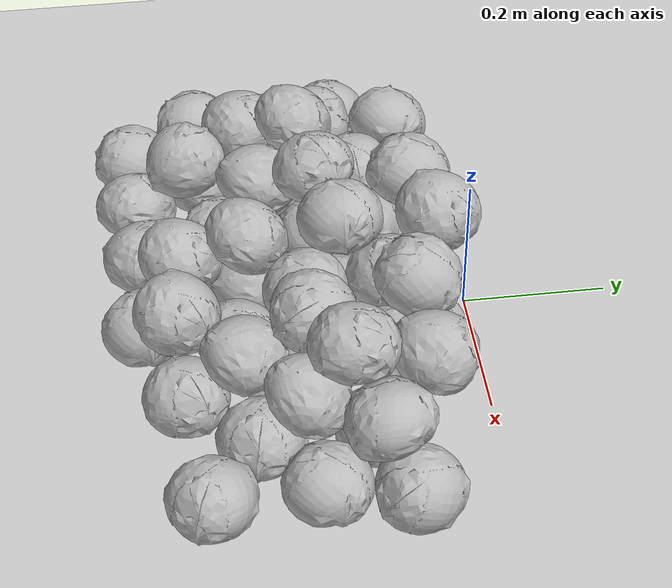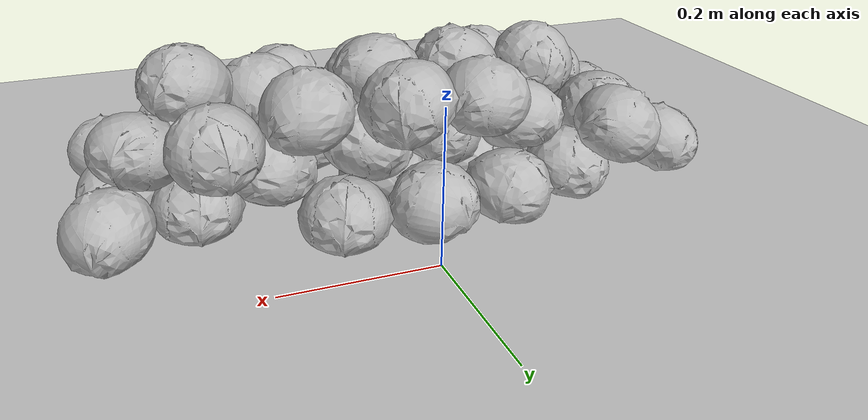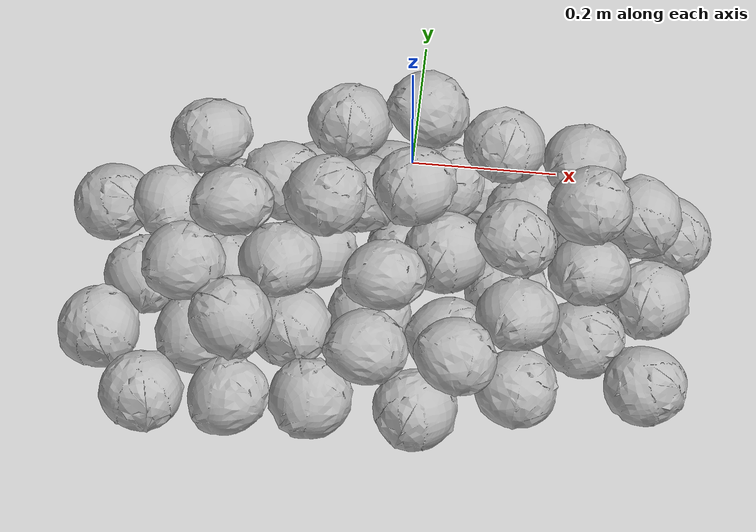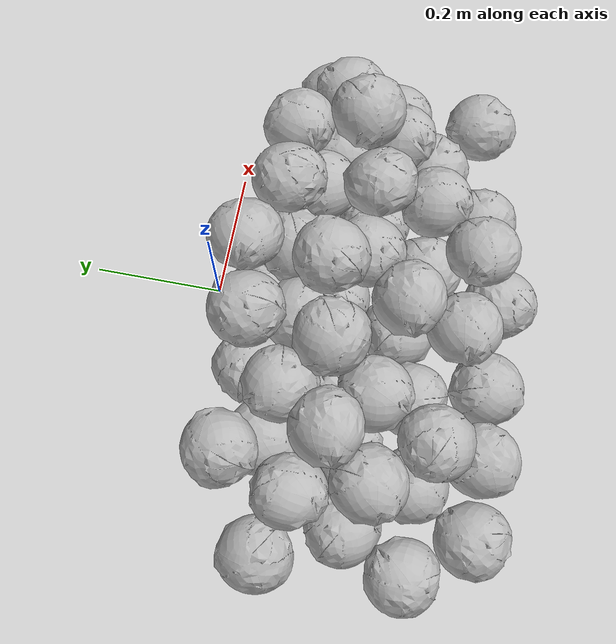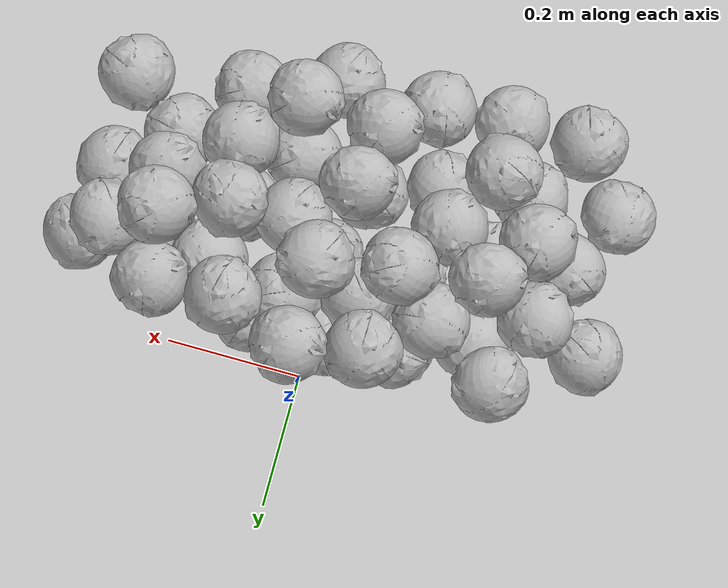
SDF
<sdf version="1.6">
 <world name="default">
  <model name="ground_plane">
   <static>1</static>
   <link name="link">
    <collision name="collision">
     <geometry><plane><normal>0 0 1</normal><size>100 100</size></plane></geometry>
     <surface><friction><ode><mu>100</mu><mu2>50</mu2></ode></friction></surface>
    </collision>
    <visual name="visual">
     <cast_shadows>0</cast_shadows>
     <geometry><plane><normal>0 0 1</normal><size>100 100</size></plane></geometry>
     <material>
      <script><uri>file://media/materials/scripts/gazebo.material</uri><name>Gazebo/Grey</name></script>
     </material>
    </visual>
   </link>
  </model>
  <model name="cabbage_0">
   <link name="link">
    <inertial>
     <mass>1</mass>
     <inertia><ixx>0.001</ixx><ixy>0</ixy><ixz>0</ixz><iyy>0.001</iyy><iyz>0</iyz><izz>0.001</izz></inertia>
    </inertial>
    <collision name="collision">
     <geometry>
      <mesh><scale>0.001 0.001 0.001</scale><uri>model://cabbage/cabbage_single.dae</uri></mesh>
     </geometry>
     <surface>
      <friction><ode><mu>0.8</mu><mu2>0.8</mu2></ode></friction>
      <contact><ode><max_vel>0.1</max_vel><min_depth>0.0001</min_depth></ode></contact>
     </surface>
    </collision>
    <visual name="visual">
     <geometry>
      <mesh><scale>0.001 0.001 0.001</scale><uri>model://cabbage/cabbage_single.dae</uri></mesh>
     </geometry>
     <material><script><uri>model://cabbage/texture.material</uri><name>CabbageTexture</name></script></material>
    </visual>
   </link>
   <pose>0.095652 -0.068931 0.004157 1.60014 0.007328 -0.263092</pose>
  </model>
  <model name="cabbage_3">
   <link name="link">
    <inertial>
     <mass>1</mass>
     <inertia><ixx>0.001</ixx><ixy>0</ixy><ixz>0</ixz><iyy>0.001</iyy><iyz>0</iyz><izz>0.001</izz></inertia>
    </inertial>
    <collision name="collision">
     <geometry>
      <mesh><scale>0.001 0.001 0.001</scale><uri>model://cabbage/cabbage_single.dae</uri></mesh>
     </geometry>
     <surface>
      <friction><ode><mu>0.8</mu><mu2>0.8</mu2></ode></friction>
      <contact><ode><max_vel>0.1</max_vel><min_depth>0.0001</min_depth></ode></contact>
     </surface>
    </collision>
    <visual name="visual">
     <geometry>
      <mesh><scale>0.001 0.001 0.001</scale><uri>model://cabbage/cabbage_single.dae</uri></mesh>
     </geometry>
     <material><script><uri>model://cabbage/texture.material</uri><name>CabbageTexture</name></script></material>
    </visual>
   </link>
   <pose>0.26333 -0.303335 0.004278 1.61265 0.006299 -1.68663</pose>
  </model>
  <model name="cabbage_4">
   <link name="link">
    <inertial>
     <mass>1</mass>
     <inertia><ixx>0.001</ixx><ixy>0</ixy><ixz>0</ixz><iyy>0.001</iyy><iyz>0</iyz><izz>0.001</izz></inertia>
    </inertial>
    <collision name="collision">
     <geometry>
      <mesh><scale>0.001 0.001 0.001</scale><uri>model://cabbage/cabbage_single.dae</uri></mesh>
     </geometry>
     <surface>
      <friction><ode><mu>0.8</mu><mu2>0.8</mu2></ode></friction>
      <contact><ode><max_vel>0.1</max_vel><min_depth>0.0001</min_depth></ode></contact>
     </surface>
    </collision>
    <visual name="visual">
     <geometry>
      <mesh><scale>0.001 0.001 0.001</scale><uri>model://cabbage/cabbage_single.dae</uri></mesh>
     </geometry>
     <material><script><uri>model://cabbage/texture.material</uri><name>CabbageTexture</name></script></material>
    </visual>
   </link>
   <pose>-0.031392 -0.290349 0.003988 1.57302 0.014128 1.00935</pose>
  </model>
  <model name="cabbage_5">
   <link name="link">
    <inertial>
     <mass>1</mass>
     <inertia><ixx>0.001</ixx><ixy>0</ixy><ixz>0</ixz><iyy>0.001</iyy><iyz>0</iyz><izz>0.001</izz></inertia>
    </inertial>
    <collision name="collision">
     <geometry>
      <mesh><scale>0.001 0.001 0.001</scale><uri>model://cabbage/cabbage_single.dae</uri></mesh>
     </geometry>
     <surface>
      <friction><ode><mu>0.8</mu><mu2>0.8</mu2></ode></friction>
      <contact><ode><max_vel>0.1</max_vel><min_depth>0.0001</min_depth></ode></contact>
     </surface>
    </collision>
    <visual name="visual">
     <geometry>
      <mesh><scale>0.001 0.001 0.001</scale><uri>model://cabbage/cabbage_single.dae</uri></mesh>
     </geometry>
     <material><script><uri>model://cabbage/texture.material</uri><name>CabbageTexture</name></script></material>
    </visual>
   </link>
   <pose>-0.123182 -0.082967 0.005416 1.46042 0.123401 1.52923</pose>
  </model>
  <model name="cabbage_8">
   <link name="link">
    <inertial>
     <mass>1</mass>
     <inertia><ixx>0.001</ixx><ixy>0</ixy><ixz>0</ixz><iyy>0.001</iyy><iyz>0</iyz><izz>0.001</izz></inertia>
    </inertial>
    <collision name="collision">
     <geometry>
      <mesh><scale>0.001 0.001 0.001</scale><uri>model://cabbage/cabbage_single.dae</uri></mesh>
     </geometry>
     <surface>
      <friction><ode><mu>0.8</mu><mu2>0.8</mu2></ode></friction>
      <contact><ode><max_vel>0.1</max_vel><min_depth>0.0001</min_depth></ode></contact>
     </surface>
    </collision>
    <visual name="visual">
     <geometry>
      <mesh><scale>0.001 0.001 0.001</scale><uri>model://cabbage/cabbage_single.dae</uri></mesh>
     </geometry>
     <material><script><uri>model://cabbage/texture.material</uri><name>CabbageTexture</name></script></material>
    </visual>
   </link>
   <pose>0.144358 -0.227039 0.004095 1.59204 0.007763 2.21992</pose>
  </model>
  <model name="cabbage_9">
   <link name="link">
    <inertial>
     <mass>1</mass>
     <inertia><ixx>0.001</ixx><ixy>0</ixy><ixz>0</ixz><iyy>0.001</iyy><iyz>0</iyz><izz>0.001</izz></inertia>
    </inertial>
    <collision name="collision">
     <geometry>
      <mesh><scale>0.001 0.001 0.001</scale><uri>model://cabbage/cabbage_single.dae</uri></mesh>
     </geometry>
     <surface>
      <friction><ode><mu>0.8</mu><mu2>0.8</mu2></ode></friction>
      <contact><ode><max_vel>0.1</max_vel><min_depth>0.0001</min_depth></ode></contact>
     </surface>
    </collision>
    <visual name="visual">
     <geometry>
      <mesh><scale>0.001 0.001 0.001</scale><uri>model://cabbage/cabbage_single.dae</uri></mesh>
     </geometry>
     <material><script><uri>model://cabbage/texture.material</uri><name>CabbageTexture</name></script></material>
    </visual>
   </link>
   <pose>-0.092201 -0.428561 0.006497 1.65998 -0.10997 0.374089</pose>
  </model>
  <model name="cabbage_13">
   <link name="link">
    <inertial>
     <mass>1</mass>
     <inertia><ixx>0.001</ixx><ixy>0</ixy><ixz>0</ixz><iyy>0.001</iyy><iyz>0</iyz><izz>0.001</izz></inertia>
    </inertial>
    <collision name="collision">
     <geometry>
      <mesh><scale>0.001 0.001 0.001</scale><uri>model://cabbage/cabbage_single.dae</uri></mesh>
     </geometry>
     <surface>
      <friction><ode><mu>0.8</mu><mu2>0.8</mu2></ode></friction>
      <contact><ode><max_vel>0.1</max_vel><min_depth>0.0001</min_depth></ode></contact>
     </surface>
    </collision>
    <visual name="visual">
     <geometry>
      <mesh><scale>0.001 0.001 0.001</scale><uri>model://cabbage/cabbage_single.dae</uri></mesh>
     </geometry>
     <material><script><uri>model://cabbage/texture.material</uri><name>CabbageTexture</name></script></material>
    </visual>
   </link>
   <pose>0.257826 -0.154445 0.003945 1.57602 0.008658 -0.016472</pose>
  </model>
  <model name="cabbage_14">
   <link name="link">
    <inertial>
     <mass>1</mass>
     <inertia><ixx>0.001</ixx><ixy>0</ixy><ixz>0</ixz><iyy>0.001</iyy><iyz>0</iyz><izz>0.001</izz></inertia>
    </inertial>
    <collision name="collision">
     <geometry>
      <mesh><scale>0.001 0.001 0.001</scale><uri>model://cabbage/cabbage_single.dae</uri></mesh>
     </geometry>
     <surface>
      <friction><ode><mu>0.8</mu><mu2>0.8</mu2></ode></friction>
      <contact><ode><max_vel>0.1</max_vel><min_depth>0.0001</min_depth></ode></contact>
     </surface>
    </collision>
    <visual name="visual">
     <geometry>
      <mesh><scale>0.001 0.001 0.001</scale><uri>model://cabbage/cabbage_single.dae</uri></mesh>
     </geometry>
     <material><script><uri>model://cabbage/texture.material</uri><name>CabbageTexture</name></script></material>
    </visual>
   </link>
   <pose>-0.256394 -0.335493 0.006672 1.7714 -0.058008 0.009481</pose>
  </model>
  <model name="cabbage_15">
   <link name="link">
    <inertial>
     <mass>1</mass>
     <inertia><ixx>0.001</ixx><ixy>0</ixy><ixz>0</ixz><iyy>0.001</iyy><iyz>0</iyz><izz>0.001</izz></inertia>
    </inertial>
    <collision name="collision">
     <geometry>
      <mesh><scale>0.001 0.001 0.001</scale><uri>model://cabbage/cabbage_single.dae</uri></mesh>
     </geometry>
     <surface>
      <friction><ode><mu>0.8</mu><mu2>0.8</mu2></ode></friction>
      <contact><ode><max_vel>0.1</max_vel><min_depth>0.0001</min_depth></ode></contact>
     </surface>
    </collision>
    <visual name="visual">
     <geometry>
      <mesh><scale>0.001 0.001 0.001</scale><uri>model://cabbage/cabbage_single.dae</uri></mesh>
     </geometry>
     <material><script><uri>model://cabbage/texture.material</uri><name>CabbageTexture</name></script></material>
    </visual>
   </link>
   <pose>0.007523 -0.177659 0.005238 1.46223 -0.141863 2.21274</pose>
  </model>
  <model name="cabbage_18">
   <link name="link">
    <inertial>
     <mass>1</mass>
     <inertia><ixx>0.001</ixx><ixy>0</ixy><ixz>0</ixz><iyy>0.001</iyy><iyz>0</iyz><izz>0.001</izz></inertia>
    </inertial>
    <collision name="collision">
     <geometry>
      <mesh><scale>0.001 0.001 0.001</scale><uri>model://cabbage/cabbage_single.dae</uri></mesh>
     </geometry>
     <surface>
      <friction><ode><mu>0.8</mu><mu2>0.8</mu2></ode></friction>
      <contact><ode><max_vel>0.1</max_vel><min_depth>0.0001</min_depth></ode></contact>
     </surface>
    </collision>
    <visual name="visual">
     <geometry>
      <mesh><scale>0.001 0.001 0.001</scale><uri>model://cabbage/cabbage_single.dae</uri></mesh>
     </geometry>
     <material><script><uri>model://cabbage/texture.material</uri><name>CabbageTexture</name></script></material>
    </visual>
   </link>
   <pose>0.177823 -0.389709 0.00418 1.55977 0.036699 -0.992467</pose>
  </model>
  <model name="cabbage_19">
   <link name="link">
    <inertial>
     <mass>1</mass>
     <inertia><ixx>0.001</ixx><ixy>0</ixy><ixz>0</ixz><iyy>0.001</iyy><iyz>0</iyz><izz>0.001</izz></inertia>
    </inertial>
    <collision name="collision">
     <geometry>
      <mesh><scale>0.001 0.001 0.001</scale><uri>model://cabbage/cabbage_single.dae</uri></mesh>
     </geometry>
     <surface>
      <friction><ode><mu>0.8</mu><mu2>0.8</mu2></ode></friction>
      <contact><ode><max_vel>0.1</max_vel><min_depth>0.0001</min_depth></ode></contact>
     </surface>
    </collision>
    <visual name="visual">
     <geometry>
      <mesh><scale>0.001 0.001 0.001</scale><uri>model://cabbage/cabbage_single.dae</uri></mesh>
     </geometry>
     <material><script><uri>model://cabbage/texture.material</uri><name>CabbageTexture</name></script></material>
    </visual>
   </link>
   <pose>-0.223103 -0.118078 0.006149 1.41108 -0.183366 0.392662</pose>
  </model>
  <model name="cabbage_23">
   <link name="link">
    <inertial>
     <mass>1</mass>
     <inertia><ixx>0.001</ixx><ixy>0</ixy><ixz>0</ixz><iyy>0.001</iyy><iyz>0</iyz><izz>0.001</izz></inertia>
    </inertial>
    <collision name="collision">
     <geometry>
      <mesh><scale>0.001 0.001 0.001</scale><uri>model://cabbage/cabbage_single.dae</uri></mesh>
     </geometry>
     <surface>
      <friction><ode><mu>0.8</mu><mu2>0.8</mu2></ode></friction>
      <contact><ode><max_vel>0.1</max_vel><min_depth>0.0001</min_depth></ode></contact>
     </surface>
    </collision>
    <visual name="visual">
     <geometry>
      <mesh><scale>0.001 0.001 0.001</scale><uri>model://cabbage/cabbage_single.dae</uri></mesh>
     </geometry>
     <material><script><uri>model://cabbage/texture.material</uri><name>CabbageTexture</name></script></material>
    </visual>
   </link>
   <pose>0.342589 -0.232944 0.003949 1.57656 0.007596 2.96856</pose>
  </model>
  <model name="cabbage_24">
   <link name="link">
    <inertial>
     <mass>1</mass>
     <inertia><ixx>0.001</ixx><ixy>0</ixy><ixz>0</ixz><iyy>0.001</iyy><iyz>0</iyz><izz>0.001</izz></inertia>
    </inertial>
    <collision name="collision">
     <geometry>
      <mesh><scale>0.001 0.001 0.001</scale><uri>model://cabbage/cabbage_single.dae</uri></mesh>
     </geometry>
     <surface>
      <friction><ode><mu>0.8</mu><mu2>0.8</mu2></ode></friction>
      <contact><ode><max_vel>0.1</max_vel><min_depth>0.0001</min_depth></ode></contact>
     </surface>
    </collision>
    <visual name="visual">
     <geometry>
      <mesh><scale>0.001 0.001 0.001</scale><uri>model://cabbage/cabbage_single.dae</uri></mesh>
     </geometry>
     <material><script><uri>model://cabbage/texture.material</uri><name>CabbageTexture</name></script></material>
    </visual>
   </link>
   <pose>-0.117569 -0.195493 0.003917 1.57591 0.008334 2.5017</pose>
  </model>
  <model name="cabbage_25">
   <link name="link">
    <inertial>
     <mass>1</mass>
     <inertia><ixx>0.001</ixx><ixy>0</ixy><ixz>0</ixz><iyy>0.001</iyy><iyz>0</iyz><izz>0.001</izz></inertia>
    </inertial>
    <collision name="collision">
     <geometry>
      <mesh><scale>0.001 0.001 0.001</scale><uri>model://cabbage/cabbage_single.dae</uri></mesh>
     </geometry>
     <surface>
      <friction><ode><mu>0.8</mu><mu2>0.8</mu2></ode></friction>
      <contact><ode><max_vel>0.1</max_vel><min_depth>0.0001</min_depth></ode></contact>
     </surface>
    </collision>
    <visual name="visual">
     <geometry>
      <mesh><scale>0.001 0.001 0.001</scale><uri>model://cabbage/cabbage_single.dae</uri></mesh>
     </geometry>
     <material><script><uri>model://cabbage/texture.material</uri><name>CabbageTexture</name></script></material>
    </visual>
   </link>
   <pose>-0.028365 -0.073903 0.009732 1.2463 -0.214871 -1.57877</pose>
  </model>
  <model name="cabbage_29">
   <link name="link">
    <inertial>
     <mass>1</mass>
     <inertia><ixx>0.001</ixx><ixy>0</ixy><ixz>0</ixz><iyy>0.001</iyy><iyz>0</iyz><izz>0.001</izz></inertia>
    </inertial>
    <collision name="collision">
     <geometry>
      <mesh><scale>0.001 0.001 0.001</scale><uri>model://cabbage/cabbage_single.dae</uri></mesh>
     </geometry>
     <surface>
      <friction><ode><mu>0.8</mu><mu2>0.8</mu2></ode></friction>
      <contact><ode><max_vel>0.1</max_vel><min_depth>0.0001</min_depth></ode></contact>
     </surface>
    </collision>
    <visual name="visual">
     <geometry>
      <mesh><scale>0.001 0.001 0.001</scale><uri>model://cabbage/cabbage_single.dae</uri></mesh>
     </geometry>
     <material><script><uri>model://cabbage/texture.material</uri><name>CabbageTexture</name></script></material>
    </visual>
   </link>
   <pose>-0.336674 -0.259183 0.005064 1.47229 0.012889 1.13985</pose>
  </model>
  <model name="cabbage_33">
   <link name="link">
    <inertial>
     <mass>1</mass>
     <inertia><ixx>0.001</ixx><ixy>0</ixy><ixz>0</ixz><iyy>0.001</iyy><iyz>0</iyz><izz>0.001</izz></inertia>
    </inertial>
    <collision name="collision">
     <geometry>
      <mesh><scale>0.001 0.001 0.001</scale><uri>model://cabbage/cabbage_single.dae</uri></mesh>
     </geometry>
     <surface>
      <friction><ode><mu>0.8</mu><mu2>0.8</mu2></ode></friction>
      <contact><ode><max_vel>0.1</max_vel><min_depth>0.0001</min_depth></ode></contact>
     </surface>
    </collision>
    <visual name="visual">
     <geometry>
      <mesh><scale>0.001 0.001 0.001</scale><uri>model://cabbage/cabbage_single.dae</uri></mesh>
     </geometry>
     <material><script><uri>model://cabbage/texture.material</uri><name>CabbageTexture</name></script></material>
    </visual>
   </link>
   <pose>0.176023 -0.136395 0.05431 1.38701 -0.008547 1.23999</pose>
  </model>
  <model name="cabbage_34">
   <link name="link">
    <inertial>
     <mass>1</mass>
     <inertia><ixx>0.001</ixx><ixy>0</ixy><ixz>0</ixz><iyy>0.001</iyy><iyz>0</iyz><izz>0.001</izz></inertia>
    </inertial>
    <collision name="collision">
     <geometry>
      <mesh><scale>0.001 0.001 0.001</scale><uri>model://cabbage/cabbage_single.dae</uri></mesh>
     </geometry>
     <surface>
      <friction><ode><mu>0.8</mu><mu2>0.8</mu2></ode></friction>
      <contact><ode><max_vel>0.1</max_vel><min_depth>0.0001</min_depth></ode></contact>
     </surface>
    </collision>
    <visual name="visual">
     <geometry>
      <mesh><scale>0.001 0.001 0.001</scale><uri>model://cabbage/cabbage_single.dae</uri></mesh>
     </geometry>
     <material><script><uri>model://cabbage/texture.material</uri><name>CabbageTexture</name></script></material>
    </visual>
   </link>
   <pose>-0.382624 -0.145849 0.009496 1.88399 0.106803 -2.03489</pose>
  </model>
  <model name="cabbage_38">
   <link name="link">
    <inertial>
     <mass>1</mass>
     <inertia><ixx>0.001</ixx><ixy>0</ixy><ixz>0</ixz><iyy>0.001</iyy><iyz>0</iyz><izz>0.001</izz></inertia>
    </inertial>
    <collision name="collision">
     <geometry>
      <mesh><scale>0.001 0.001 0.001</scale><uri>model://cabbage/cabbage_single.dae</uri></mesh>
     </geometry>
     <surface>
      <friction><ode><mu>0.8</mu><mu2>0.8</mu2></ode></friction>
      <contact><ode><max_vel>0.1</max_vel><min_depth>0.0001</min_depth></ode></contact>
     </surface>
    </collision>
    <visual name="visual">
     <geometry>
      <mesh><scale>0.001 0.001 0.001</scale><uri>model://cabbage/cabbage_single.dae</uri></mesh>
     </geometry>
     <material><script><uri>model://cabbage/texture.material</uri><name>CabbageTexture</name></script></material>
    </visual>
   </link>
   <pose>0.041406 -0.434485 0.005413 1.44281 -0.136354 2.85036</pose>
  </model>
  <model name="cabbage_39">
   <link name="link">
    <inertial>
     <mass>1</mass>
     <inertia><ixx>0.001</ixx><ixy>0</ixy><ixz>0</ixz><iyy>0.001</iyy><iyz>0</iyz><izz>0.001</izz></inertia>
    </inertial>
    <collision name="collision">
     <geometry>
      <mesh><scale>0.001 0.001 0.001</scale><uri>model://cabbage/cabbage_single.dae</uri></mesh>
     </geometry>
     <surface>
      <friction><ode><mu>0.8</mu><mu2>0.8</mu2></ode></friction>
      <contact><ode><max_vel>0.1</max_vel><min_depth>0.0001</min_depth></ode></contact>
     </surface>
    </collision>
    <visual name="visual">
     <geometry>
      <mesh><scale>0.001 0.001 0.001</scale><uri>model://cabbage/cabbage_single.dae</uri></mesh>
     </geometry>
     <material><script><uri>model://cabbage/texture.material</uri><name>CabbageTexture</name></script></material>
    </visual>
   </link>
   <pose>-0.119221 -0.321247 0.009598 1.53789 0.350993 -2.77977</pose>
  </model>
  <model name="cabbage_43">
   <link name="link">
    <inertial>
     <mass>1</mass>
     <inertia><ixx>0.001</ixx><ixy>0</ixy><ixz>0</ixz><iyy>0.001</iyy><iyz>0</iyz><izz>0.001</izz></inertia>
    </inertial>
    <collision name="collision">
     <geometry>
      <mesh><scale>0.001 0.001 0.001</scale><uri>model://cabbage/cabbage_single.dae</uri></mesh>
     </geometry>
     <surface>
      <friction><ode><mu>0.8</mu><mu2>0.8</mu2></ode></friction>
      <contact><ode><max_vel>0.1</max_vel><min_depth>0.0001</min_depth></ode></contact>
     </surface>
    </collision>
    <visual name="visual">
     <geometry>
      <mesh><scale>0.001 0.001 0.001</scale><uri>model://cabbage/cabbage_single.dae</uri></mesh>
     </geometry>
     <material><script><uri>model://cabbage/texture.material</uri><name>CabbageTexture</name></script></material>
    </visual>
   </link>
   <pose>-0.031149 -0.397083 0.063675 1.22152 0.056045 -0.294026</pose>
  </model>
  <model name="cabbage_44">
   <link name="link">
    <inertial>
     <mass>1</mass>
     <inertia><ixx>0.001</ixx><ixy>0</ixy><ixz>0</ixz><iyy>0.001</iyy><iyz>0</iyz><izz>0.001</izz></inertia>
    </inertial>
    <collision name="collision">
     <geometry>
      <mesh><scale>0.001 0.001 0.001</scale><uri>model://cabbage/cabbage_single.dae</uri></mesh>
     </geometry>
     <surface>
      <friction><ode><mu>0.8</mu><mu2>0.8</mu2></ode></friction>
      <contact><ode><max_vel>0.1</max_vel><min_depth>0.0001</min_depth></ode></contact>
     </surface>
    </collision>
    <visual name="visual">
     <geometry>
      <mesh><scale>0.001 0.001 0.001</scale><uri>model://cabbage/cabbage_single.dae</uri></mesh>
     </geometry>
     <material><script><uri>model://cabbage/texture.material</uri><name>CabbageTexture</name></script></material>
    </visual>
   </link>
   <pose>-0.231266 -0.253244 0.008444 1.53178 0.305616 1.14866</pose>
  </model>
  <model name="cabbage_48">
   <link name="link">
    <inertial>
     <mass>1</mass>
     <inertia><ixx>0.001</ixx><ixy>0</ixy><ixz>0</ixz><iyy>0.001</iyy><iyz>0</iyz><izz>0.001</izz></inertia>
    </inertial>
    <collision name="collision">
     <geometry>
      <mesh><scale>0.001 0.001 0.001</scale><uri>model://cabbage/cabbage_single.dae</uri></mesh>
     </geometry>
     <surface>
      <friction><ode><mu>0.8</mu><mu2>0.8</mu2></ode></friction>
      <contact><ode><max_vel>0.1</max_vel><min_depth>0.0001</min_depth></ode></contact>
     </surface>
    </collision>
    <visual name="visual">
     <geometry>
      <mesh><scale>0.001 0.001 0.001</scale><uri>model://cabbage/cabbage_single.dae</uri></mesh>
     </geometry>
     <material><script><uri>model://cabbage/texture.material</uri><name>CabbageTexture</name></script></material>
    </visual>
   </link>
   <pose>0.08047 -0.316313 0.003954 1.57567 0.008816 -0.81952</pose>
  </model>
  <model name="cabbage_49">
   <link name="link">
    <inertial>
     <mass>1</mass>
     <inertia><ixx>0.001</ixx><ixy>0</ixy><ixz>0</ixz><iyy>0.001</iyy><iyz>0</iyz><izz>0.001</izz></inertia>
    </inertial>
    <collision name="collision">
     <geometry>
      <mesh><scale>0.001 0.001 0.001</scale><uri>model://cabbage/cabbage_single.dae</uri></mesh>
     </geometry>
     <surface>
      <friction><ode><mu>0.8</mu><mu2>0.8</mu2></ode></friction>
      <contact><ode><max_vel>0.1</max_vel><min_depth>0.0001</min_depth></ode></contact>
     </surface>
    </collision>
    <visual name="visual">
     <geometry>
      <mesh><scale>0.001 0.001 0.001</scale><uri>model://cabbage/cabbage_single.dae</uri></mesh>
     </geometry>
     <material><script><uri>model://cabbage/texture.material</uri><name>CabbageTexture</name></script></material>
    </visual>
   </link>
   <pose>-0.164239 -0.12843 0.077256 1.53273 0.139971 -1.39683</pose>
  </model>
  <model name="cabbage_53">
   <link name="link">
    <inertial>
     <mass>1</mass>
     <inertia><ixx>0.001</ixx><ixy>0</ixy><ixz>0</ixz><iyy>0.001</iyy><iyz>0</iyz><izz>0.001</izz></inertia>
    </inertial>
    <collision name="collision">
     <geometry>
      <mesh><scale>0.001 0.001 0.001</scale><uri>model://cabbage/cabbage_single.dae</uri></mesh>
     </geometry>
     <surface>
      <friction><ode><mu>0.8</mu><mu2>0.8</mu2></ode></friction>
      <contact><ode><max_vel>0.1</max_vel><min_depth>0.0001</min_depth></ode></contact>
     </surface>
    </collision>
    <visual name="visual">
     <geometry>
      <mesh><scale>0.001 0.001 0.001</scale><uri>model://cabbage/cabbage_single.dae</uri></mesh>
     </geometry>
     <material><script><uri>model://cabbage/texture.material</uri><name>CabbageTexture</name></script></material>
    </visual>
   </link>
   <pose>0.084157 -0.401351 0.07586 1.21543 0.093858 -0.805464</pose>
  </model>
  <model name="cabbage_54">
   <link name="link">
    <inertial>
     <mass>1</mass>
     <inertia><ixx>0.001</ixx><ixy>0</ixy><ixz>0</ixz><iyy>0.001</iyy><iyz>0</iyz><izz>0.001</izz></inertia>
    </inertial>
    <collision name="collision">
     <geometry>
      <mesh><scale>0.001 0.001 0.001</scale><uri>model://cabbage/cabbage_single.dae</uri></mesh>
     </geometry>
     <surface>
      <friction><ode><mu>0.8</mu><mu2>0.8</mu2></ode></friction>
      <contact><ode><max_vel>0.1</max_vel><min_depth>0.0001</min_depth></ode></contact>
     </surface>
    </collision>
    <visual name="visual">
     <geometry>
      <mesh><scale>0.001 0.001 0.001</scale><uri>model://cabbage/cabbage_single.dae</uri></mesh>
     </geometry>
     <material><script><uri>model://cabbage/texture.material</uri><name>CabbageTexture</name></script></material>
    </visual>
   </link>
   <pose>-0.3802 -0.336285 0.01411 1.25825 0.396812 -2.71628</pose>
  </model>
  <model name="cabbage_55">
   <link name="link">
    <inertial>
     <mass>1</mass>
     <inertia><ixx>0.001</ixx><ixy>0</ixy><ixz>0</ixz><iyy>0.001</iyy><iyz>0</iyz><izz>0.001</izz></inertia>
    </inertial>
    <collision name="collision">
     <geometry>
      <mesh><scale>0.001 0.001 0.001</scale><uri>model://cabbage/cabbage_single.dae</uri></mesh>
     </geometry>
     <surface>
      <friction><ode><mu>0.8</mu><mu2>0.8</mu2></ode></friction>
      <contact><ode><max_vel>0.1</max_vel><min_depth>0.0001</min_depth></ode></contact>
     </surface>
    </collision>
    <visual name="visual">
     <geometry>
      <mesh><scale>0.001 0.001 0.001</scale><uri>model://cabbage/cabbage_single.dae</uri></mesh>
     </geometry>
     <material><script><uri>model://cabbage/texture.material</uri><name>CabbageTexture</name></script></material>
    </visual>
   </link>
   <pose>-0.038488 -0.145495 0.074023 1.8353 0.199353 -2.38927</pose>
  </model>
  <model name="cabbage_58">
   <link name="link">
    <inertial>
     <mass>1</mass>
     <inertia><ixx>0.001</ixx><ixy>0</ixy><ixz>0</ixz><iyy>0.001</iyy><iyz>0</iyz><izz>0.001</izz></inertia>
    </inertial>
    <collision name="collision">
     <geometry>
      <mesh><scale>0.001 0.001 0.001</scale><uri>model://cabbage/cabbage_single.dae</uri></mesh>
     </geometry>
     <surface>
      <friction><ode><mu>0.8</mu><mu2>0.8</mu2></ode></friction>
      <contact><ode><max_vel>0.1</max_vel><min_depth>0.0001</min_depth></ode></contact>
     </surface>
    </collision>
    <visual name="visual">
     <geometry>
      <mesh><scale>0.001 0.001 0.001</scale><uri>model://cabbage/cabbage_single.dae</uri></mesh>
     </geometry>
     <material><script><uri>model://cabbage/texture.material</uri><name>CabbageTexture</name></script></material>
    </visual>
   </link>
   <pose>0.349769 -0.370483 0.003845 1.5764 0.007948 -1.89141</pose>
  </model>
  <model name="cabbage_59">
   <link name="link">
    <inertial>
     <mass>1</mass>
     <inertia><ixx>0.001</ixx><ixy>0</ixy><ixz>0</ixz><iyy>0.001</iyy><iyz>0</iyz><izz>0.001</izz></inertia>
    </inertial>
    <collision name="collision">
     <geometry>
      <mesh><scale>0.001 0.001 0.001</scale><uri>model://cabbage/cabbage_single.dae</uri></mesh>
     </geometry>
     <surface>
      <friction><ode><mu>0.8</mu><mu2>0.8</mu2></ode></friction>
      <contact><ode><max_vel>0.1</max_vel><min_depth>0.0001</min_depth></ode></contact>
     </surface>
    </collision>
    <visual name="visual">
     <geometry>
      <mesh><scale>0.001 0.001 0.001</scale><uri>model://cabbage/cabbage_single.dae</uri></mesh>
     </geometry>
     <material><script><uri>model://cabbage/texture.material</uri><name>CabbageTexture</name></script></material>
    </visual>
   </link>
   <pose>-0.32472 -0.181585 0.05963 1.58285 0.406539 0.535247</pose>
  </model>
  <model name="cabbage_61">
   <link name="link">
    <inertial>
     <mass>1</mass>
     <inertia><ixx>0.001</ixx><ixy>0</ixy><ixz>0</ixz><iyy>0.001</iyy><iyz>0</iyz><izz>0.001</izz></inertia>
    </inertial>
    <collision name="collision">
     <geometry>
      <mesh><scale>0.001 0.001 0.001</scale><uri>model://cabbage/cabbage_single.dae</uri></mesh>
     </geometry>
     <surface>
      <friction><ode><mu>0.8</mu><mu2>0.8</mu2></ode></friction>
      <contact><ode><max_vel>0.1</max_vel><min_depth>0.0001</min_depth></ode></contact>
     </surface>
    </collision>
    <visual name="visual">
     <geometry>
      <mesh><scale>0.001 0.001 0.001</scale><uri>model://cabbage/cabbage_single.dae</uri></mesh>
     </geometry>
     <material><script><uri>model://cabbage/texture.material</uri><name>CabbageTexture</name></script></material>
    </visual>
   </link>
   <pose>0.069699 -0.10486 0.079899 2.00128 0.049171 -1.05102</pose>
  </model>
  <model name="cabbage_63">
   <link name="link">
    <inertial>
     <mass>1</mass>
     <inertia><ixx>0.001</ixx><ixy>0</ixy><ixz>0</ixz><iyy>0.001</iyy><iyz>0</iyz><izz>0.001</izz></inertia>
    </inertial>
    <collision name="collision">
     <geometry>
      <mesh><scale>0.001 0.001 0.001</scale><uri>model://cabbage/cabbage_single.dae</uri></mesh>
     </geometry>
     <surface>
      <friction><ode><mu>0.8</mu><mu2>0.8</mu2></ode></friction>
      <contact><ode><max_vel>0.1</max_vel><min_depth>0.0001</min_depth></ode></contact>
     </surface>
    </collision>
    <visual name="visual">
     <geometry>
      <mesh><scale>0.001 0.001 0.001</scale><uri>model://cabbage/cabbage_single.dae</uri></mesh>
     </geometry>
     <material><script><uri>model://cabbage/texture.material</uri><name>CabbageTexture</name></script></material>
    </visual>
   </link>
   <pose>0.172248 -0.330023 0.064547 1.18033 0.218514 0.621383</pose>
  </model>
  <model name="cabbage_64">
   <link name="link">
    <inertial>
     <mass>1</mass>
     <inertia><ixx>0.001</ixx><ixy>0</ixy><ixz>0</ixz><iyy>0.001</iyy><iyz>0</iyz><izz>0.001</izz></inertia>
    </inertial>
    <collision name="collision">
     <geometry>
      <mesh><scale>0.001 0.001 0.001</scale><uri>model://cabbage/cabbage_single.dae</uri></mesh>
     </geometry>
     <surface>
      <friction><ode><mu>0.8</mu><mu2>0.8</mu2></ode></friction>
      <contact><ode><max_vel>0.1</max_vel><min_depth>0.0001</min_depth></ode></contact>
     </surface>
    </collision>
    <visual name="visual">
     <geometry>
      <mesh><scale>0.001 0.001 0.001</scale><uri>model://cabbage/cabbage_single.dae</uri></mesh>
     </geometry>
     <material><script><uri>model://cabbage/texture.material</uri><name>CabbageTexture</name></script></material>
    </visual>
   </link>
   <pose>-0.147063 -0.281809 0.082304 1.20945 0.083451 0.715571</pose>
  </model>
  <model name="cabbage_65">
   <link name="link">
    <inertial>
     <mass>1</mass>
     <inertia><ixx>0.001</ixx><ixy>0</ixy><ixz>0</ixz><iyy>0.001</iyy><iyz>0</iyz><izz>0.001</izz></inertia>
    </inertial>
    <collision name="collision">
     <geometry>
      <mesh><scale>0.001 0.001 0.001</scale><uri>model://cabbage/cabbage_single.dae</uri></mesh>
     </geometry>
     <surface>
      <friction><ode><mu>0.8</mu><mu2>0.8</mu2></ode></friction>
      <contact><ode><max_vel>0.1</max_vel><min_depth>0.0001</min_depth></ode></contact>
     </surface>
    </collision>
    <visual name="visual">
     <geometry>
      <mesh><scale>0.001 0.001 0.001</scale><uri>model://cabbage/cabbage_single.dae</uri></mesh>
     </geometry>
     <material><script><uri>model://cabbage/texture.material</uri><name>CabbageTexture</name></script></material>
    </visual>
   </link>
   <pose>0.063667 -0.216073 0.072005 1.3253 -0.153399 2.82423</pose>
  </model>
  <model name="cabbage_66">
   <link name="link">
    <inertial>
     <mass>1</mass>
     <inertia><ixx>0.001</ixx><ixy>0</ixy><ixz>0</ixz><iyy>0.001</iyy><iyz>0</iyz><izz>0.001</izz></inertia>
    </inertial>
    <collision name="collision">
     <geometry>
      <mesh><scale>0.001 0.001 0.001</scale><uri>model://cabbage/cabbage_single.dae</uri></mesh>
     </geometry>
     <surface>
      <friction><ode><mu>0.8</mu><mu2>0.8</mu2></ode></friction>
      <contact><ode><max_vel>0.1</max_vel><min_depth>0.0001</min_depth></ode></contact>
     </surface>
    </collision>
    <visual name="visual">
     <geometry>
      <mesh><scale>0.001 0.001 0.001</scale><uri>model://cabbage/cabbage_single.dae</uri></mesh>
     </geometry>
     <material><script><uri>model://cabbage/texture.material</uri><name>CabbageTexture</name></script></material>
    </visual>
   </link>
   <pose>0.010323 -0.054273 0.151061 1.22398 0.273406 -0.461441</pose>
  </model>
  <model name="cabbage_68">
   <link name="link">
    <inertial>
     <mass>1</mass>
     <inertia><ixx>0.001</ixx><ixy>0</ixy><ixz>0</ixz><iyy>0.001</iyy><iyz>0</iyz><izz>0.001</izz></inertia>
    </inertial>
    <collision name="collision">
     <geometry>
      <mesh><scale>0.001 0.001 0.001</scale><uri>model://cabbage/cabbage_single.dae</uri></mesh>
     </geometry>
     <surface>
      <friction><ode><mu>0.8</mu><mu2>0.8</mu2></ode></friction>
      <contact><ode><max_vel>0.1</max_vel><min_depth>0.0001</min_depth></ode></contact>
     </surface>
    </collision>
    <visual name="visual">
     <geometry>
      <mesh><scale>0.001 0.001 0.001</scale><uri>model://cabbage/cabbage_single.dae</uri></mesh>
     </geometry>
     <material><script><uri>model://cabbage/texture.material</uri><name>CabbageTexture</name></script></material>
    </visual>
   </link>
   <pose>0.261409 -0.269179 0.0825 0.957001 0.288937 0.426855</pose>
  </model>
  <model name="cabbage_69">
   <link name="link">
    <inertial>
     <mass>1</mass>
     <inertia><ixx>0.001</ixx><ixy>0</ixy><ixz>0</ixz><iyy>0.001</iyy><iyz>0</iyz><izz>0.001</izz></inertia>
    </inertial>
    <collision name="collision">
     <geometry>
      <mesh><scale>0.001 0.001 0.001</scale><uri>model://cabbage/cabbage_single.dae</uri></mesh>
     </geometry>
     <surface>
      <friction><ode><mu>0.8</mu><mu2>0.8</mu2></ode></friction>
      <contact><ode><max_vel>0.1</max_vel><min_depth>0.0001</min_depth></ode></contact>
     </surface>
    </collision>
    <visual name="visual">
     <geometry>
      <mesh><scale>0.001 0.001 0.001</scale><uri>model://cabbage/cabbage_single.dae</uri></mesh>
     </geometry>
     <material><script><uri>model://cabbage/texture.material</uri><name>CabbageTexture</name></script></material>
    </visual>
   </link>
   <pose>-0.282603 -0.282323 0.081054 1.55195 0.024112 -0.114836</pose>
  </model>
  <model name="cabbage_70">
   <link name="link">
    <inertial>
     <mass>1</mass>
     <inertia><ixx>0.001</ixx><ixy>0</ixy><ixz>0</ixz><iyy>0.001</iyy><iyz>0</iyz><izz>0.001</izz></inertia>
    </inertial>
    <collision name="collision">
     <geometry>
      <mesh><scale>0.001 0.001 0.001</scale><uri>model://cabbage/cabbage_single.dae</uri></mesh>
     </geometry>
     <surface>
      <friction><ode><mu>0.8</mu><mu2>0.8</mu2></ode></friction>
      <contact><ode><max_vel>0.1</max_vel><min_depth>0.0001</min_depth></ode></contact>
     </surface>
    </collision>
    <visual name="visual">
     <geometry>
      <mesh><scale>0.001 0.001 0.001</scale><uri>model://cabbage/cabbage_single.dae</uri></mesh>
     </geometry>
     <material><script><uri>model://cabbage/texture.material</uri><name>CabbageTexture</name></script></material>
    </visual>
   </link>
   <pose>-0.078206 -0.076573 0.134689 1.69903 0.011845 -3.06454</pose>
  </model>
  <model name="cabbage_73">
   <link name="link">
    <inertial>
     <mass>1</mass>
     <inertia><ixx>0.001</ixx><ixy>0</ixy><ixz>0</ixz><iyy>0.001</iyy><iyz>0</iyz><izz>0.001</izz></inertia>
    </inertial>
    <collision name="collision">
     <geometry>
      <mesh><scale>0.001 0.001 0.001</scale><uri>model://cabbage/cabbage_single.dae</uri></mesh>
     </geometry>
     <surface>
      <friction><ode><mu>0.8</mu><mu2>0.8</mu2></ode></friction>
      <contact><ode><max_vel>0.1</max_vel><min_depth>0.0001</min_depth></ode></contact>
     </surface>
    </collision>
    <visual name="visual">
     <geometry>
      <mesh><scale>0.001 0.001 0.001</scale><uri>model://cabbage/cabbage_single.dae</uri></mesh>
     </geometry>
     <material><script><uri>model://cabbage/texture.material</uri><name>CabbageTexture</name></script></material>
    </visual>
   </link>
   <pose>-0.005413 -0.318026 0.108118 1.01605 -0.216302 -0.191967</pose>
  </model>
  <model name="cabbage_74">
   <link name="link">
    <inertial>
     <mass>1</mass>
     <inertia><ixx>0.001</ixx><ixy>0</ixy><ixz>0</ixz><iyy>0.001</iyy><iyz>0</iyz><izz>0.001</izz></inertia>
    </inertial>
    <collision name="collision">
     <geometry>
      <mesh><scale>0.001 0.001 0.001</scale><uri>model://cabbage/cabbage_single.dae</uri></mesh>
     </geometry>
     <surface>
      <friction><ode><mu>0.8</mu><mu2>0.8</mu2></ode></friction>
      <contact><ode><max_vel>0.1</max_vel><min_depth>0.0001</min_depth></ode></contact>
     </surface>
    </collision>
    <visual name="visual">
     <geometry>
      <mesh><scale>0.001 0.001 0.001</scale><uri>model://cabbage/cabbage_single.dae</uri></mesh>
     </geometry>
     <material><script><uri>model://cabbage/texture.material</uri><name>CabbageTexture</name></script></material>
    </visual>
   </link>
   <pose>-0.084424 -0.18363 0.141474 1.97829 0.078495 -0.984199</pose>
  </model>
  <model name="cabbage_78">
   <link name="link">
    <inertial>
     <mass>1</mass>
     <inertia><ixx>0.001</ixx><ixy>0</ixy><ixz>0</ixz><iyy>0.001</iyy><iyz>0</iyz><izz>0.001</izz></inertia>
    </inertial>
    <collision name="collision">
     <geometry>
      <mesh><scale>0.001 0.001 0.001</scale><uri>model://cabbage/cabbage_single.dae</uri></mesh>
     </geometry>
     <surface>
      <friction><ode><mu>0.8</mu><mu2>0.8</mu2></ode></friction>
      <contact><ode><max_vel>0.1</max_vel><min_depth>0.0001</min_depth></ode></contact>
     </surface>
    </collision>
    <visual name="visual">
     <geometry>
      <mesh><scale>0.001 0.001 0.001</scale><uri>model://cabbage/cabbage_single.dae</uri></mesh>
     </geometry>
     <material><script><uri>model://cabbage/texture.material</uri><name>CabbageTexture</name></script></material>
    </visual>
   </link>
   <pose>0.148067 -0.2394 0.119809 1.628 -0.442828 -2.53869</pose>
  </model>
  <model name="cabbage_79">
   <link name="link">
    <inertial>
     <mass>1</mass>
     <inertia><ixx>0.001</ixx><ixy>0</ixy><ixz>0</ixz><iyy>0.001</iyy><iyz>0</iyz><izz>0.001</izz></inertia>
    </inertial>
    <collision name="collision">
     <geometry>
      <mesh><scale>0.001 0.001 0.001</scale><uri>model://cabbage/cabbage_single.dae</uri></mesh>
     </geometry>
     <surface>
      <friction><ode><mu>0.8</mu><mu2>0.8</mu2></ode></friction>
      <contact><ode><max_vel>0.1</max_vel><min_depth>0.0001</min_depth></ode></contact>
     </surface>
    </collision>
    <visual name="visual">
     <geometry>
      <mesh><scale>0.001 0.001 0.001</scale><uri>model://cabbage/cabbage_single.dae</uri></mesh>
     </geometry>
     <material><script><uri>model://cabbage/texture.material</uri><name>CabbageTexture</name></script></material>
    </visual>
   </link>
   <pose>-0.189523 -0.44399 0.009883 1.48883 -0.353885 0.106287</pose>
  </model>
  <model name="cabbage_83">
   <link name="link">
    <inertial>
     <mass>1</mass>
     <inertia><ixx>0.001</ixx><ixy>0</ixy><ixz>0</ixz><iyy>0.001</iyy><iyz>0</iyz><izz>0.001</izz></inertia>
    </inertial>
    <collision name="collision">
     <geometry>
      <mesh><scale>0.001 0.001 0.001</scale><uri>model://cabbage/cabbage_single.dae</uri></mesh>
     </geometry>
     <surface>
      <friction><ode><mu>0.8</mu><mu2>0.8</mu2></ode></friction>
      <contact><ode><max_vel>0.1</max_vel><min_depth>0.0001</min_depth></ode></contact>
     </surface>
    </collision>
    <visual name="visual">
     <geometry>
      <mesh><scale>0.001 0.001 0.001</scale><uri>model://cabbage/cabbage_single.dae</uri></mesh>
     </geometry>
     <material><script><uri>model://cabbage/texture.material</uri><name>CabbageTexture</name></script></material>
    </visual>
   </link>
   <pose>0.351736 -0.128927 0.009747 1.44298 -0.360279 -2.47012</pose>
  </model>
  <model name="cabbage_84">
   <link name="link">
    <inertial>
     <mass>1</mass>
     <inertia><ixx>0.001</ixx><ixy>0</ixy><ixz>0</ixz><iyy>0.001</iyy><iyz>0</iyz><izz>0.001</izz></inertia>
    </inertial>
    <collision name="collision">
     <geometry>
      <mesh><scale>0.001 0.001 0.001</scale><uri>model://cabbage/cabbage_single.dae</uri></mesh>
     </geometry>
     <surface>
      <friction><ode><mu>0.8</mu><mu2>0.8</mu2></ode></friction>
      <contact><ode><max_vel>0.1</max_vel><min_depth>0.0001</min_depth></ode></contact>
     </surface>
    </collision>
    <visual name="visual">
     <geometry>
      <mesh><scale>0.001 0.001 0.001</scale><uri>model://cabbage/cabbage_single.dae</uri></mesh>
     </geometry>
     <material><script><uri>model://cabbage/texture.material</uri><name>CabbageTexture</name></script></material>
    </visual>
   </link>
   <pose>-0.319886 -0.446745 0.003779 1.56753 0.009125 -2.80287</pose>
  </model>
  <model name="cabbage_88">
   <link name="link">
    <inertial>
     <mass>1</mass>
     <inertia><ixx>0.001</ixx><ixy>0</ixy><ixz>0</ixz><iyy>0.001</iyy><iyz>0</iyz><izz>0.001</izz></inertia>
    </inertial>
    <collision name="collision">
     <geometry>
      <mesh><scale>0.001 0.001 0.001</scale><uri>model://cabbage/cabbage_single.dae</uri></mesh>
     </geometry>
     <surface>
      <friction><ode><mu>0.8</mu><mu2>0.8</mu2></ode></friction>
      <contact><ode><max_vel>0.1</max_vel><min_depth>0.0001</min_depth></ode></contact>
     </surface>
    </collision>
    <visual name="visual">
     <geometry>
      <mesh><scale>0.001 0.001 0.001</scale><uri>model://cabbage/cabbage_single.dae</uri></mesh>
     </geometry>
     <material><script><uri>model://cabbage/texture.material</uri><name>CabbageTexture</name></script></material>
    </visual>
   </link>
   <pose>0.337229 -0.143365 0.089411 1.49268 0.419829 -2.53915</pose>
  </model>
  <model name="cabbage_89">
   <link name="link">
    <inertial>
     <mass>1</mass>
     <inertia><ixx>0.001</ixx><ixy>0</ixy><ixz>0</ixz><iyy>0.001</iyy><iyz>0</iyz><izz>0.001</izz></inertia>
    </inertial>
    <collision name="collision">
     <geometry>
      <mesh><scale>0.001 0.001 0.001</scale><uri>model://cabbage/cabbage_single.dae</uri></mesh>
     </geometry>
     <surface>
      <friction><ode><mu>0.8</mu><mu2>0.8</mu2></ode></friction>
      <contact><ode><max_vel>0.1</max_vel><min_depth>0.0001</min_depth></ode></contact>
     </surface>
    </collision>
    <visual name="visual">
     <geometry>
      <mesh><scale>0.001 0.001 0.001</scale><uri>model://cabbage/cabbage_single.dae</uri></mesh>
     </geometry>
     <material><script><uri>model://cabbage/texture.material</uri><name>CabbageTexture</name></script></material>
    </visual>
   </link>
   <pose>-0.258672 -0.082208 0.078846 1.78123 0.387766 2.8799</pose>
  </model>
  <model name="cabbage_90">
   <link name="link">
    <inertial>
     <mass>1</mass>
     <inertia><ixx>0.001</ixx><ixy>0</ixy><ixz>0</ixz><iyy>0.001</iyy><iyz>0</iyz><izz>0.001</izz></inertia>
    </inertial>
    <collision name="collision">
     <geometry>
      <mesh><scale>0.001 0.001 0.001</scale><uri>model://cabbage/cabbage_single.dae</uri></mesh>
     </geometry>
     <surface>
      <friction><ode><mu>0.8</mu><mu2>0.8</mu2></ode></friction>
      <contact><ode><max_vel>0.1</max_vel><min_depth>0.0001</min_depth></ode></contact>
     </surface>
    </collision>
    <visual name="visual">
     <geometry>
      <mesh><scale>0.001 0.001 0.001</scale><uri>model://cabbage/cabbage_single.dae</uri></mesh>
     </geometry>
     <material><script><uri>model://cabbage/texture.material</uri><name>CabbageTexture</name></script></material>
    </visual>
   </link>
   <pose>0.026486 -0.172083 0.144879 1.40747 0.149666 2.7045</pose>
  </model>
  <model name="cabbage_93">
   <link name="link">
    <inertial>
     <mass>1</mass>
     <inertia><ixx>0.001</ixx><ixy>0</ixy><ixz>0</ixz><iyy>0.001</iyy><iyz>0</iyz><izz>0.001</izz></inertia>
    </inertial>
    <collision name="collision">
     <geometry>
      <mesh><scale>0.001 0.001 0.001</scale><uri>model://cabbage/cabbage_single.dae</uri></mesh>
     </geometry>
     <surface>
      <friction><ode><mu>0.8</mu><mu2>0.8</mu2></ode></friction>
      <contact><ode><max_vel>0.1</max_vel><min_depth>0.0001</min_depth></ode></contact>
     </surface>
    </collision>
    <visual name="visual">
     <geometry>
      <mesh><scale>0.001 0.001 0.001</scale><uri>model://cabbage/cabbage_single.dae</uri></mesh>
     </geometry>
     <material><script><uri>model://cabbage/texture.material</uri><name>CabbageTexture</name></script></material>
    </visual>
   </link>
   <pose>0.235927 -0.100206 0.11058 1.2035 0.167395 0.140719</pose>
  </model>
  <model name="cabbage_94">
   <link name="link">
    <inertial>
     <mass>1</mass>
     <inertia><ixx>0.001</ixx><ixy>0</ixy><ixz>0</ixz><iyy>0.001</iyy><iyz>0</iyz><izz>0.001</izz></inertia>
    </inertial>
    <collision name="collision">
     <geometry>
      <mesh><scale>0.001 0.001 0.001</scale><uri>model://cabbage/cabbage_single.dae</uri></mesh>
     </geometry>
     <surface>
      <friction><ode><mu>0.8</mu><mu2>0.8</mu2></ode></friction>
      <contact><ode><max_vel>0.1</max_vel><min_depth>0.0001</min_depth></ode></contact>
     </surface>
    </collision>
    <visual name="visual">
     <geometry>
      <mesh><scale>0.001 0.001 0.001</scale><uri>model://cabbage/cabbage_single.dae</uri></mesh>
     </geometry>
     <material><script><uri>model://cabbage/texture.material</uri><name>CabbageTexture</name></script></material>
    </visual>
   </link>
   <pose>-0.220347 -0.356097 0.085971 1.90823 -0.16883 1.23695</pose>
  </model>
  <model name="cabbage_95">
   <link name="link">
    <inertial>
     <mass>1</mass>
     <inertia><ixx>0.001</ixx><ixy>0</ixy><ixz>0</ixz><iyy>0.001</iyy><iyz>0</iyz><izz>0.001</izz></inertia>
    </inertial>
    <collision name="collision">
     <geometry>
      <mesh><scale>0.001 0.001 0.001</scale><uri>model://cabbage/cabbage_single.dae</uri></mesh>
     </geometry>
     <surface>
      <friction><ode><mu>0.8</mu><mu2>0.8</mu2></ode></friction>
      <contact><ode><max_vel>0.1</max_vel><min_depth>0.0001</min_depth></ode></contact>
     </surface>
    </collision>
    <visual name="visual">
     <geometry>
      <mesh><scale>0.001 0.001 0.001</scale><uri>model://cabbage/cabbage_single.dae</uri></mesh>
     </geometry>
     <material><script><uri>model://cabbage/texture.material</uri><name>CabbageTexture</name></script></material>
    </visual>
   </link>
   <pose>0.123241 -0.101996 0.139319 1.82928 -0.217557 3.05195</pose>
  </model>
  <model name="cabbage_98">
   <link name="link">
    <inertial>
     <mass>1</mass>
     <inertia><ixx>0.001</ixx><ixy>0</ixy><ixz>0</ixz><iyy>0.001</iyy><iyz>0</iyz><izz>0.001</izz></inertia>
    </inertial>
    <collision name="collision">
     <geometry>
      <mesh><scale>0.001 0.001 0.001</scale><uri>model://cabbage/cabbage_single.dae</uri></mesh>
     </geometry>
     <surface>
      <friction><ode><mu>0.8</mu><mu2>0.8</mu2></ode></friction>
      <contact><ode><max_vel>0.1</max_vel><min_depth>0.0001</min_depth></ode></contact>
     </surface>
    </collision>
    <visual name="visual">
     <geometry>
      <mesh><scale>0.001 0.001 0.001</scale><uri>model://cabbage/cabbage_single.dae</uri></mesh>
     </geometry>
     <material><script><uri>model://cabbage/texture.material</uri><name>CabbageTexture</name></script></material>
    </visual>
   </link>
   <pose>0.265441 -0.188374 0.151753 1.65342 -0.154713 -0.671743</pose>
  </model>
  <model name="cabbage_99">
   <link name="link">
    <inertial>
     <mass>1</mass>
     <inertia><ixx>0.001</ixx><ixy>0</ixy><ixz>0</ixz><iyy>0.001</iyy><iyz>0</iyz><izz>0.001</izz></inertia>
    </inertial>
    <collision name="collision">
     <geometry>
      <mesh><scale>0.001 0.001 0.001</scale><uri>model://cabbage/cabbage_single.dae</uri></mesh>
     </geometry>
     <surface>
      <friction><ode><mu>0.8</mu><mu2>0.8</mu2></ode></friction>
      <contact><ode><max_vel>0.1</max_vel><min_depth>0.0001</min_depth></ode></contact>
     </surface>
    </collision>
    <visual name="visual">
     <geometry>
      <mesh><scale>0.001 0.001 0.001</scale><uri>model://cabbage/cabbage_single.dae</uri></mesh>
     </geometry>
     <material><script><uri>model://cabbage/texture.material</uri><name>CabbageTexture</name></script></material>
    </visual>
   </link>
   <pose>-0.218985 -0.235786 0.131765 0.953323 -0.202856 -0.106673</pose>
  </model>
 </world>
</sdf>
